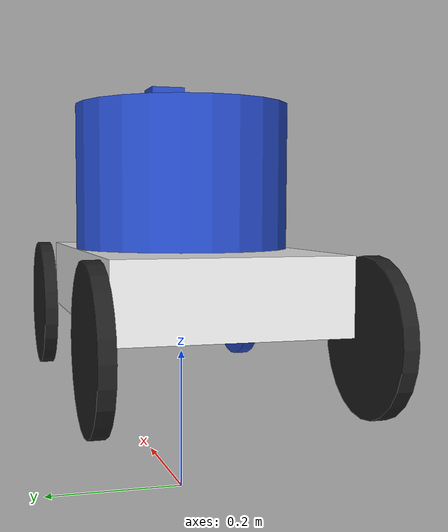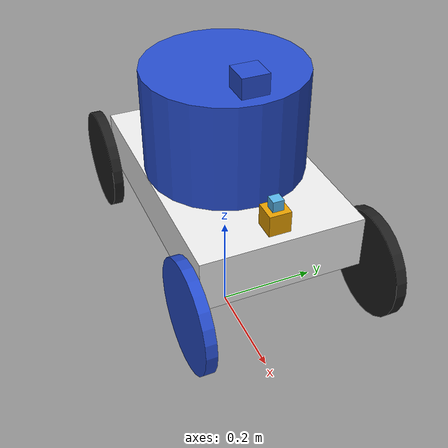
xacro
<?xml version="1.0"?>

<robot name="my_robot" xmlns:xacro="http://ros.org/wiki/xacro">
	<property name="base_width_x" value="0.5"/>
	<property name="base_width_y" value="0.3" />
	<property name="base_height" value="0.1"/>

	<property name="wheel_radius" value="0.1" />
	<property name="wheel_length" value="0.02" />

	<property name="cylinder_length" value="0.2" />

	<property name="hokuyo_size" value="0.05" />
	<property name="map_origin_to_base_origin" value= "0.0"/>

	<property name="PI" value="3.141592" />

  <macro name="cylinder_inertia" params="m r h">
    <inertia  ixx="${m*(3*r*r+h*h)/12}" ixy = "0" ixz = "0"
              iyy="${m*(3*r*r+h*h)/12}" iyz = "0"
              izz="${m*r*r/2}" />
  </macro>

	<link name="base_footprint">
    <visual>
        <origin xyz="0 0 0 " rpy="0 0 0" />
        <geometry>
            <box size="0.001 0.001 0.001" />
        </geometry>
    </visual>
  </link>

  <gazebo reference="base_footprint">
    <turnGravityOff>false</turnGravityOff>
  </gazebo>

  <joint name="base_footprint_joint" type="fixed">
    <origin xyz="0 0 ${wheel_radius + base_height/2}" rpy="0 0 0" />
    <parent link="base_footprint"/>
    <child link="base_link" />
  </joint>

	<link name="base_link">
		<visual>
			<origin xyz="0 0 ${wheel_radius + base_height/2}" rpy="0 0 0" />
			<geometry>
				<box size="${base_width_x} ${base_width_y} ${base_height}" />
			</geometry>
		</visual>

		<collision>
			<origin xyz="0 0 ${wheel_radius + base_height/2}" rpy="0 0 0" />
			<geometry>
				<box size="${base_width_x} ${base_width_y} ${base_height}" />
			</geometry>
		</collision>

		<inertial>
		  <origin xyz="0 0 0" rpy="0 0 0"/>
		  <mass value="1"/>
		  <inertia
		    ixx="1.0" ixy="0.0" ixz="0.0"
		    iyy="1.0" iyz="0.0"
		    izz="1.0"/>
		</inertial>
	</link>

	<gazebo reference="base_link" >
		<material>Gazebo/White</material>
		<turnGravityOff>false</turnGravityOff>
	</gazebo>

	<link name="bl_wheel">
		<visual>
			<origin xyz="0 0 0" rpy="${PI/2} 0 0 " />
			<geometry>
				<cylinder length="${wheel_length}" radius="${wheel_radius}" />
			</geometry>
		</visual>

		<collision>
			<origin xyz="0 0 0" rpy="${PI/2} 0 0 " />
			<geometry>
				<cylinder length="${wheel_length}" radius="${wheel_radius}" />
			</geometry>
		</collision>

		<inertial>
      		<origin xyz="0 0 0" rpy="${PI/2} 0 0"/>
      		<mass value="1"/>
			<cylinder_inertia  m="1" r="${wheel_radius}" h="${wheel_length}" />
    	</inertial>
	</link>

	<gazebo reference="bl_wheel" >
		<material>Gazebo/Black</material>
		<turnGravityOff>false</turnGravityOff>
	</gazebo>

	<joint name="bl_wheel_joint" type="continuous" >
		<origin xyz="${-base_width_x/2} ${base_width_y/2 + wheel_length} ${wheel_radius}" rpy="0 0 0" />
		<parent link="base_link" />
		<child link="bl_wheel" />
    <axis xyz="0 1 0" rpy="0  0" />
    <limit effort="100" velocity="100"/>
    <joint_properties damping="0.0" friction="0.0"/>
	</joint>

	<transmission name="bl_wheel_joint_trans">
		<type>transmission_interface/SimpleTransmission</type>
		<joint name="bl_wheel_joint" >
			<hardwareInterface>EffortJointInterface</hardwareInterface>
		</joint>
    <actuator name="motor1">
      <hardwareInterface>EffortJointInterface</hardwareInterface>
      <mechanicalReduction>1</mechanicalReduction>
    </actuator>
	</transmission>

	<link name="fl_wheel">
		<visual>
			<origin xyz="0 0 0" rpy="${PI/2} 0 0 " />
			<geometry>
				<cylinder length="${wheel_length}" radius="${wheel_radius}" />
			</geometry>
		</visual>

		<collision>
			<origin xyz="0 0 0" rpy="${PI/2} 0 0 " />
			<geometry>
				<cylinder length="${wheel_length}" radius="${wheel_radius}" />
			</geometry>
		</collision>
		<inertial>
			<origin xyz="0 0 0" rpy="${PI/2} 0 0"/>
			<mass value="1"/>
			<cylinder_inertia  m="1" r="${wheel_radius}" h="${wheel_length}" />
		</inertial>
	</link>

	<gazebo reference="fl_wheel" >
		<material>Gazebo/Black</material>
		<turnGravityOff>false</turnGravityOff>
	</gazebo>

	<joint name="fl_wheel_joint" type="continuous" >
		<origin xyz="${base_width_x/2} ${base_width_y/2 + wheel_length} ${wheel_radius}" rpy="0 0 0" />
		<parent link="base_link" />
		<child link="fl_wheel" />
    <axis xyz="0 1 0" rpy="0  0" />
    <limit effort="100" velocity="100"/>
    <joint_properties damping="0.0" friction="0.0"/>
	</joint>

	<transmission name="fl_wheel_joint_trans">
		<type>transmission_interface/SimpleTransmission</type>
		<joint name="fl_wheel_joint">
			<hardwareInterface>EffortJointInterface</hardwareInterface>
		</joint>
    <actuator name="motor2">
      <hardwareInterface>EffortJointInterface</hardwareInterface>
      <mechanicalReduction>1</mechanicalReduction>
    </actuator>
	</transmission>

	<link name="br_wheel">
		<visual>
			<origin xyz="0 0 0" rpy="${PI/2} 0 0 " />
			<geometry>
				<cylinder length="${wheel_length}" radius="${wheel_radius}" />
			</geometry>
		</visual>

		<collision>
			<origin xyz="0 0 0" rpy="${PI/2} 0 0 " />
			<geometry>
				<cylinder length="${wheel_length}" radius="${wheel_radius}" />
			</geometry>
		</collision>

		<inertial>
      <origin xyz="0 0 0" rpy="${PI/2} 0 0"/>
      <mass value="1"/>
			<cylinder_inertia  m="1" r="${wheel_radius}" h="${wheel_length}" />
    </inertial>
	</link>

	<gazebo reference="br_wheel" >
		<material>Gazebo/Black</material>
		<turnGravityOff>false</turnGravityOff>
	</gazebo>

	<joint name="br_wheel_joint" type="continuous" >
		<origin xyz="${-base_width_x/2} ${-base_width_y/2 - wheel_length} ${wheel_radius}" rpy="0 0 0" />
		<parent link="base_link" />
		<child link="br_wheel" />
    <axis xyz="0 1 0" rpy="0  0" />
    <limit effort="100" velocity="100"/>
    <joint_properties damping="0.0" friction="0.0"/>
	</joint>

	<transmission name="br_wheel_joint_trans">
		<type>transmission_interface/SimpleTransmission</type>
		<joint name="br_wheel_joint" >
			<hardwareInterface>EffortJointInterface</hardwareInterface>
		</joint>
    <actuator name="motor3">
      <hardwareInterface>EffortJointInterface</hardwareInterface>
      <mechanicalReduction>1</mechanicalReduction>
    </actuator>
	</transmission>

	<link name="fr_wheel">
		<visual>
			<origin xyz="0 0 0" rpy="${PI/2} 0 0 " />
			<geometry>
				<cylinder length="${wheel_length}" radius="${wheel_radius}" />
			</geometry>
		</visual>

		<collision>
			<origin xyz="0 0 0" rpy="${PI/2} 0 0 " />
			<geometry>
				<cylinder length="${wheel_length}" radius="${wheel_radius}" />
			</geometry>
		</collision>

		<inertial>
      <origin xyz="0 0 0" rpy="${PI/2} 0 0"/>
      <mass value="1"/>
			<cylinder_inertia  m="1" r="${wheel_radius}" h="${wheel_length}" />
    </inertial>
	</link>

	<gazebo reference="fr_wheel" >
		<material>Gazebo/Blue</material>
		<turnGravityOff>false</turnGravityOff>
	</gazebo>

	<joint name="fr_wheel_joint" type="continuous" >
		<origin xyz="${base_width_x/2} ${-base_width_y/2 - wheel_length} ${wheel_radius}" rpy="0 0 0" />
		<parent link="base_link" />
		<child link="fr_wheel" />
    <axis xyz="0 1 0" rpy="0  0" />
    <limit effort="100" velocity="100"/>
    <joint_properties damping="0.0" friction="0.0"/>
	</joint>

	<transmission name="fr_wheel_joint_trans">
		<type>transmission_interface/SimpleTransmission</type>
		<joint name="fr_wheel_joint" >
			<hardwareInterface>EffortJointInterface</hardwareInterface>
		</joint>
    <actuator name="motor4">
      <hardwareInterface>EffortJointInterface</hardwareInterface>
      <mechanicalReduction>1</mechanicalReduction>
    </actuator>
	</transmission>

	<link name="cylinder_link" >
		<visual>
			<origin xyz="0 0 ${cylinder_length/2}" rpy="0 0 0 " />
			<geometry>
				<cylinder length="${cylinder_length}" radius="${base_width_y/2}" />
			</geometry>
		</visual>

		<collision>
			<origin xyz="0 0 ${cylinder_length/2}" rpy="0 0 0 " />
			<geometry>
				<cylinder length="${cylinder_length}" radius="${base_width_y/2}" />
			</geometry>
		</collision>

		<inertial>
      		<origin xyz="0 0 0" rpy="0 0 0"/>
      		<mass value="1"/>
			<cylinder_inertia  m="1" r="${base_width_y/2}" h="${cylinder_length}" />
   		</inertial>
	</link>

	<gazebo reference="cylinder_link" >
		<material>Gazebo/Blue</material>
		<turnGravityOff>false</turnGravityOff>
	</gazebo>

	<joint name="cylinder_joint" type="revolute" >
		<origin xyz="0 0 ${base_height + wheel_radius}" rpy="0 0 0" />
		<parent link="base_link" />
		<child link="cylinder_link" />
		<axis xyz="0 0 1" />
		<limit effort="100" velocity="100" upper="1000000000" lower="-1000000000"/>
		<joint_properties damping="0.0" friction="0.0"/>
	</joint>

	<transmission name="cylinder_joint_trans">
		<type>transmission_interface/SimpleTransmission</type>
		<joint name="cylinder_joint" >
			<hardwareInterface>EffortJointInterface</hardwareInterface>
		</joint>
    <actuator name="motor5">
      <hardwareInterface>EffortJointInterface</hardwareInterface>
      <mechanicalReduction>1</mechanicalReduction>
    </actuator>
	</transmission>

  <link name="hokuyo_link">
    <visual>
      <origin xyz="0 0 0" rpy="0 0 0" />
      <geometry>
        <box size="${hokuyo_size} ${hokuyo_size} ${hokuyo_size}"/>
      </geometry>
      <material name="Blue" />
    </visual>
  </link>

  <joint name="hokuyo_joint" type="fixed">
    <origin xyz="${base_width_x/4 - hokuyo_size/2} 0 ${cylinder_length +hokuyo_size/4}" rpy="0 0 0" />
    <parent link="cylinder_link"/>
    <child link="hokuyo_link" />
  </joint>

<!-- add laser sensor to hokuyo link -->
 <gazebo reference="hokuyo_link">
    <material>Gazebo/Blue</material>
    <turnGravityOff>false</turnGravityOff>
    <sensor type="ray" name="head_hokuyo_sensor">
      <pose>${hokuyo_size/2} 0 0 0 0 0</pose>
      <visualize>true</visualize>
      <update_rate>40</update_rate>
      <ray>
        <scan>
          <horizontal>
            <samples>720</samples>
            <resolution>1</resolution>
            <min_angle>${-PI/6}</min_angle>
            <max_angle>${PI/6}</max_angle>
          </horizontal>
        </scan>
        <range>
          <min>0.1</min>
          <max>20.0</max>
          <resolution>0.001</resolution>
        </range>
      </ray>
      <plugin name="gazebo_ros_head_hokuyo_controller" filename="libgazebo_ros_laser.so">
        <topicName>/scan</topicName>
        <frameName>hokuyo_link</frameName>
      </plugin>
    </sensor>
  </gazebo>

	<link name="camera_link" >
		<visual>
			<origin rpy="0 0 0" xyz="0 0 0.02" />
			<geometry>
				<box size="0.04 0.04 0.04" />
			</geometry>
		</visual>
		<collision>
			<origin rpy="0 0 0" xyz="0 0 0" />
			<geometry>
				<box size="0.04 0.04 0.04" />
			</geometry>
		</collision>
		<inertial>
			<origin xyz="0 0 0" rpy="0 0 0"/>
			<mass value="1" />
			<cylinder_inertia m="1" r="0.04" h="0.04" />
		</inertial>

	</link>

	<joint name="camera_joint" type="fixed" >
		<origin rpy="0 0 0" xyz="${base_width_x/2 - 0.04} 0 ${base_height + wheel_radius}" />
		<parent link="base_link" />
		<child link="camera_link" />
	</joint>

	<link name="gps_link" >
		<visual>
			<origin rpy="0 0 0" xyz="0 0 0.01" />
			<geometry>
				<box size="0.02 0.02 0.02" />
			</geometry>
		</visual>
		<collision>
			<origin rpy="0 0 0" xyz="0 0 0" />
			<geometry>
				<box size="0.1 0.1 0.1" />
			</geometry>
		</collision>
		<inertial>
			<origin xyz="0 0 0" rpy="0 0 0"/>
			<mass value="1" />
			<cylinder_inertia m="1" r="0.02" h="0.02" />
		</inertial>
	</link>

	<gazebo reference="camera_link">
    <sensor type="camera" name="camera1">
      <update_rate>30.0</update_rate>
      <camera name="head">
        <horizontal_fov>1.3962634</horizontal_fov>
        <image>
          <width>800</width>
          <height>800</height>
          <format>R8G8B8</format>
        </image>
        <clip>
          <near>0.02</near>
          <far>300</far>
        </clip>
        <noise>
          <type>gaussian</type>
          <!-- Noise is sampled independently per pixel on each frame.
               That pixel's noise value is added to each of its color
               channels, which at that point lie in the range [0,1]. -->
          <mean>0.0</mean>
          <stddev>0.007</stddev>
        </noise>
      </camera>
      <plugin name="camera_controller" filename="libgazebo_ros_camera.so">
        <alwaysOn>true</alwaysOn>
        <updateRate>0.0</updateRate>
        <cameraName>my_robot/camera1</cameraName>
        <imageTopicName>image_raw</imageTopicName>
        <cameraInfoTopicName>camera_info</cameraInfoTopicName>
        <frameName>camera_link</frameName>
        <hackBaseline>0.07</hackBaseline>
        <distortionK1>0.0</distortionK1>
        <distortionK2>0.0</distortionK2>
        <distortionK3>0.0</distortionK3>
        <distortionT1>0.0</distortionT1>
        <distortionT2>0.0</distortionT2>
      </plugin>
    </sensor>
  </gazebo>

	<joint name="gps_joint" type="fixed" >
		<origin rpy="0 0 0" xyz="0 0 0.04" />
		<parent link="camera_link" />
		<child link="gps_link" />
	</joint>

	<!-- add GPS sensor to gps_link -->

	<!-- add GPS plugin to publish data -->
  <gazebo>
    <plugin name="gps_controller" filename="libhector_gazebo_ros_gps.so">
      <updateRate>40</updateRate>
      <robotNamespace>/</robotNamespace>
      <bodyName>gps_link</bodyName>
      <frameId>base_link</frameId>
      <topicName>/my_robot/fix</topicName>
      <velocityTopicName>/my_robot/vel</velocityTopicName>
      <referenceLatitude>49.9</referenceLatitude>
      <referenceLongitude>8.9</referenceLongitude>
      <referenceHeading>0</referenceHeading>
      <referenceAltitude>0</referenceAltitude>
      <drift>0.0001 0.0001 0.0001</drift>
    </plugin>
  </gazebo>

<!-- add velodyne plugin to cylinder to make it spin, poorly implemented by me and needs to get the right joint -->
<!-- it can be changed on the package velodye_plugin src folder -->

	<gazebo>
		<plugin name="gazebo_ros_control" filename="libgazebo_ros_control.so">
		  <robotNamespace>/my_robot</robotNamespace>
    	<robotBaseFrame>base_link</robotBaseFrame>
		</plugin>
	</gazebo>

</robot>
